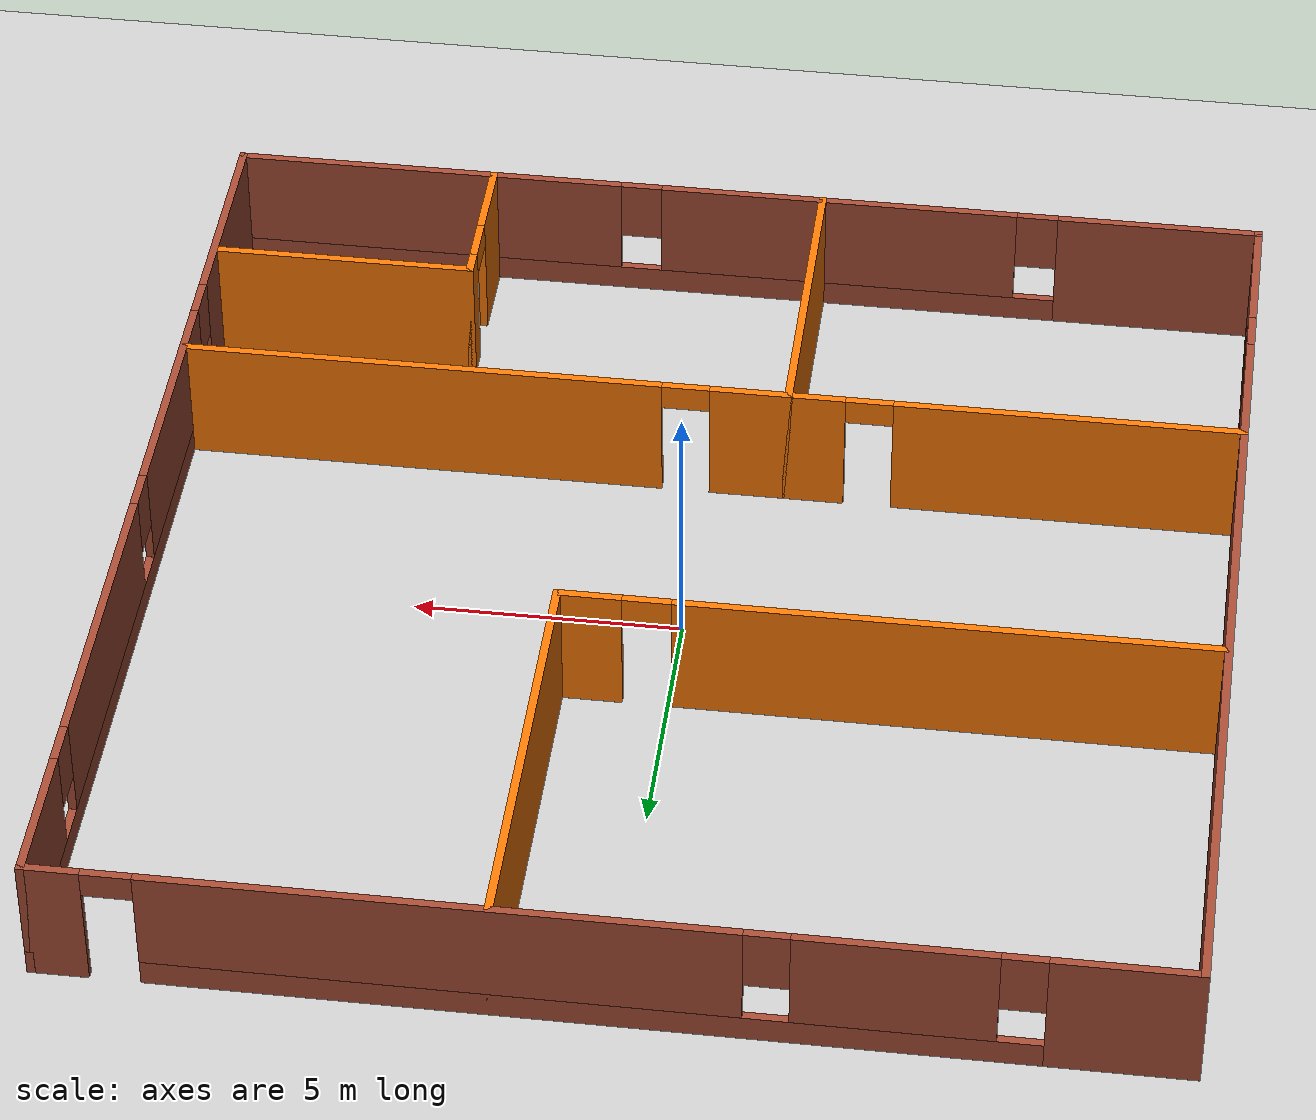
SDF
<sdf version="1.6">
 <world name="default">
  <model name="ground_plane">
   <static>1</static>
   <link name="link">
    <collision name="collision">
     <geometry><plane><normal>0 0 1</normal><size>100 100</size></plane></geometry>
     <surface><friction><ode><mu>100</mu><mu2>50</mu2></ode></friction></surface>
    </collision>
    <visual name="visual">
     <cast_shadows>0</cast_shadows>
     <geometry><plane><normal>0 0 1</normal><size>100 100</size></plane></geometry>
     <material>
      <script><uri>file://media/materials/scripts/gazebo.material</uri><name>Gazebo/Grey</name></script>
     </material>
    </visual>
   </link>
  </model>
  <model name="Building">
   <link name="Wall_0">
    <pose>0 10 0 0 -0 0</pose>
    <visual name="Wall_0_Visual_0">
     <pose>-8.74573 0 1.25 0 -0 0</pose>
     <geometry><box><size>2.65853 0.15 2.5</size></box></geometry>
     <material>
      <script><uri>file://media/materials/scripts/gazebo.material</uri><name>Gazebo/Bricks</name></script>
      <ambient>1 1 1 1</ambient>
     </material>
     <meta><layer>0</layer></meta>
    </visual>
    <collision name="Wall_0_Collision_0">
     <geometry><box><size>2.65853 0.15 2.5</size></box></geometry>
     <pose>-8.74573 0 1.25 0 -0 0</pose>
    </collision>
    <visual name="Wall_0_Visual_1">
     <pose>9.52682 0 1.25 0 -0 0</pose>
     <geometry><box><size>1.09635 0.15 2.5</size></box></geometry>
     <material>
      <script><uri>file://media/materials/scripts/gazebo.material</uri><name>Gazebo/Bricks</name></script>
      <ambient>1 1 1 1</ambient>
     </material>
     <meta><layer>0</layer></meta>
    </visual>
    <collision name="Wall_0_Collision_1">
     <geometry><box><size>1.09635 0.15 2.5</size></box></geometry>
     <pose>9.52682 0 1.25 0 -0 0</pose>
    </collision>
    <visual name="Wall_0_Visual_2">
     <pose>0.331089 0 0.25 0 -0 0</pose>
     <geometry><box><size>15.4951 0.15 0.5</size></box></geometry>
     <material>
      <script><uri>file://media/materials/scripts/gazebo.material</uri><name>Gazebo/Bricks</name></script>
      <ambient>1 1 1 1</ambient>
     </material>
     <meta><layer>0</layer></meta>
    </visual>
    <collision name="Wall_0_Collision_2">
     <geometry><box><size>15.4951 0.15 0.5</size></box></geometry>
     <pose>0.331089 0 0.25 0 -0 0</pose>
    </collision>
    <visual name="Wall_0_Visual_3">
     <pose>-4.85741 0 1.5 0 -0 0</pose>
     <geometry><box><size>3.51812 0.15 2</size></box></geometry>
     <material>
      <script><uri>file://media/materials/scripts/gazebo.material</uri><name>Gazebo/Bricks</name></script>
      <ambient>1 1 1 1</ambient>
     </material>
     <meta><layer>0</layer></meta>
    </visual>
    <collision name="Wall_0_Collision_3">
     <geometry><box><size>3.51812 0.15 2</size></box></geometry>
     <pose>-4.85741 0 1.5 0 -0 0</pose>
    </collision>
    <visual name="Wall_0_Visual_4">
     <pose>2.89015 0 1.5 0 -0 0</pose>
     <geometry><box><size>10.377 0.15 2</size></box></geometry>
     <material>
      <script><uri>file://media/materials/scripts/gazebo.material</uri><name>Gazebo/Bricks</name></script>
      <ambient>1 1 1 1</ambient>
     </material>
     <meta><layer>0</layer></meta>
    </visual>
    <collision name="Wall_0_Collision_4">
     <geometry><box><size>10.377 0.15 2</size></box></geometry>
     <pose>2.89015 0 1.5 0 -0 0</pose>
    </collision>
    <visual name="Wall_0_Visual_5">
     <pose>-7.01647 0 1.9 0 -0 0</pose>
     <geometry><box><size>0.8 0.15 1.2</size></box></geometry>
     <material>
      <script><uri>file://media/materials/scripts/gazebo.material</uri><name>Gazebo/Bricks</name></script>
      <ambient>1 1 1 1</ambient>
     </material>
     <meta><layer>0</layer></meta>
    </visual>
    <collision name="Wall_0_Collision_5">
     <geometry><box><size>0.8 0.15 1.2</size></box></geometry>
     <pose>-7.01647 0 1.9 0 -0 0</pose>
    </collision>
    <visual name="Wall_0_Visual_6">
     <pose>-2.69835 0 1.9 0 -0 0</pose>
     <geometry><box><size>0.8 0.15 1.2</size></box></geometry>
     <material>
      <script><uri>file://media/materials/scripts/gazebo.material</uri><name>Gazebo/Bricks</name></script>
      <ambient>1 1 1 1</ambient>
     </material>
     <meta><layer>0</layer></meta>
    </visual>
    <collision name="Wall_0_Collision_6">
     <geometry><box><size>0.8 0.15 1.2</size></box></geometry>
     <pose>-2.69835 0 1.9 0 -0 0</pose>
    </collision>
    <visual name="Wall_0_Visual_7">
     <pose>8.52865 0 2.25 0 -0 0</pose>
     <geometry><box><size>0.9 0.15 0.5</size></box></geometry>
     <material>
      <script><uri>file://media/materials/scripts/gazebo.material</uri><name>Gazebo/Bricks</name></script>
      <ambient>1 1 1 1</ambient>
     </material>
     <meta><layer>0</layer></meta>
    </visual>
    <collision name="Wall_0_Collision_7">
     <geometry><box><size>0.9 0.15 0.5</size></box></geometry>
     <pose>8.52865 0 2.25 0 -0 0</pose>
    </collision>
   </link>
   <link name="Wall_10">
    <collision name="Wall_10_Collision">
     <geometry><box><size>8.15 0.15 2.5</size></box></geometry>
     <pose>0 0 1.25 0 -0 0</pose>
    </collision>
    <visual name="Wall_10_Visual">
     <pose>0 0 1.25 0 -0 0</pose>
     <geometry><box><size>8.15 0.15 2.5</size></box></geometry>
     <material>
      <script><uri>file://media/materials/scripts/gazebo.material</uri><name>Gazebo/Grey</name></script>
      <ambient>0.996078 0.47451 0.0196078 1</ambient>
     </material>
     <meta><layer>0</layer></meta>
    </visual>
    <pose>2 6 0 0 -0 1.5708</pose>
   </link>
   <link name="Wall_12">
    <pose>0 -4 0 0 -0 0</pose>
    <visual name="Wall_12_Visual_0">
     <pose>-6.77572 0 1.25 0 -0 0</pose>
     <geometry><box><size>6.59856 0.15 2.5</size></box></geometry>
     <material>
      <script><uri>file://media/materials/scripts/gazebo.material</uri><name>Gazebo/Grey</name></script>
      <ambient>0.996078 0.47451 0.0196078 1</ambient>
     </material>
     <meta><layer>0</layer></meta>
    </visual>
    <collision name="Wall_12_Collision_0">
     <geometry><box><size>6.59856 0.15 2.5</size></box></geometry>
     <pose>-6.77572 0 1.25 0 -0 0</pose>
    </collision>
    <visual name="Wall_12_Visual_1">
     <pose>-1.29743 0 1.25 0 -0 0</pose>
     <geometry><box><size>2.55803 0.15 2.5</size></box></geometry>
     <material>
      <script><uri>file://media/materials/scripts/gazebo.material</uri><name>Gazebo/Grey</name></script>
      <ambient>0.996078 0.47451 0.0196078 1</ambient>
     </material>
     <meta><layer>0</layer></meta>
    </visual>
    <collision name="Wall_12_Collision_1">
     <geometry><box><size>2.55803 0.15 2.5</size></box></geometry>
     <pose>-1.29743 0 1.25 0 -0 0</pose>
    </collision>
    <visual name="Wall_12_Visual_2">
     <pose>5.47829 0 1.25 0 -0 0</pose>
     <geometry><box><size>9.19341 0.15 2.5</size></box></geometry>
     <material>
      <script><uri>file://media/materials/scripts/gazebo.material</uri><name>Gazebo/Grey</name></script>
      <ambient>0.996078 0.47451 0.0196078 1</ambient>
     </material>
     <meta><layer>0</layer></meta>
    </visual>
    <collision name="Wall_12_Collision_2">
     <geometry><box><size>9.19341 0.15 2.5</size></box></geometry>
     <pose>5.47829 0 1.25 0 -0 0</pose>
    </collision>
    <visual name="Wall_12_Visual_3">
     <pose>-3.02644 0 2.25 0 -0 0</pose>
     <geometry><box><size>0.9 0.15 0.5</size></box></geometry>
     <material>
      <script><uri>file://media/materials/scripts/gazebo.material</uri><name>Gazebo/Grey</name></script>
      <ambient>0.996078 0.47451 0.0196078 1</ambient>
     </material>
     <meta><layer>0</layer></meta>
    </visual>
    <collision name="Wall_12_Collision_3">
     <geometry><box><size>0.9 0.15 0.5</size></box></geometry>
     <pose>-3.02644 0 2.25 0 -0 0</pose>
    </collision>
    <visual name="Wall_12_Visual_4">
     <pose>0.431586 0 2.25 0 -0 0</pose>
     <geometry><box><size>0.9 0.15 0.5</size></box></geometry>
     <material>
      <script><uri>file://media/materials/scripts/gazebo.material</uri><name>Gazebo/Grey</name></script>
      <ambient>0.996078 0.47451 0.0196078 1</ambient>
     </material>
     <meta><layer>0</layer></meta>
    </visual>
    <collision name="Wall_12_Collision_4">
     <geometry><box><size>0.9 0.15 0.5</size></box></geometry>
     <pose>0.431586 0 2.25 0 -0 0</pose>
    </collision>
   </link>
   <link name="Wall_14">
    <collision name="Wall_14_Collision">
     <geometry><box><size>6.15 0.15 2.5</size></box></geometry>
     <pose>0 0 1.25 0 -0 0</pose>
    </collision>
    <visual name="Wall_14_Visual">
     <pose>0 0 1.25 0 -0 0</pose>
     <geometry><box><size>6.15 0.15 2.5</size></box></geometry>
     <material>
      <script><uri>file://media/materials/scripts/gazebo.material</uri><name>Gazebo/Grey</name></script>
      <ambient>0.996078 0.47451 0.0196078 1</ambient>
     </material>
     <meta><layer>0</layer></meta>
    </visual>
    <pose>-1.5 -7 0 0 0 -1.5708</pose>
   </link>
   <link name="Wall_16">
    <pose>5 -8.5 0 0 -0 1.5708</pose>
    <visual name="Wall_16_Visual_0">
     <pose>-0.715498 0 1.25 0 -0 0</pose>
     <geometry><box><size>1.719 0.15 2.5</size></box></geometry>
     <material>
      <script><uri>file://media/materials/scripts/gazebo.material</uri><name>Gazebo/Grey</name></script>
      <ambient>0.996078 0.47451 0.0196078 1</ambient>
     </material>
     <meta><layer>0</layer></meta>
    </visual>
    <collision name="Wall_16_Collision_0">
     <geometry><box><size>1.719 0.15 2.5</size></box></geometry>
     <pose>-0.715498 0 1.25 0 -0 0</pose>
    </collision>
    <visual name="Wall_16_Visual_1">
     <pose>1.3095 0 1.25 0 -0 0</pose>
     <geometry><box><size>0.530996 0.15 2.5</size></box></geometry>
     <material>
      <script><uri>file://media/materials/scripts/gazebo.material</uri><name>Gazebo/Grey</name></script>
      <ambient>0.996078 0.47451 0.0196078 1</ambient>
     </material>
     <meta><layer>0</layer></meta>
    </visual>
    <collision name="Wall_16_Collision_1">
     <geometry><box><size>0.530996 0.15 2.5</size></box></geometry>
     <pose>1.3095 0 1.25 0 -0 0</pose>
    </collision>
    <visual name="Wall_16_Visual_2">
     <pose>0.594004 0 2.25 0 -0 0</pose>
     <geometry><box><size>0.9 0.15 0.5</size></box></geometry>
     <material>
      <script><uri>file://media/materials/scripts/gazebo.material</uri><name>Gazebo/Grey</name></script>
      <ambient>0.996078 0.47451 0.0196078 1</ambient>
     </material>
     <meta><layer>0</layer></meta>
    </visual>
    <collision name="Wall_16_Collision_2">
     <geometry><box><size>0.9 0.15 0.5</size></box></geometry>
     <pose>0.594004 0 2.25 0 -0 0</pose>
    </collision>
   </link>
   <link name="Wall_18">
    <collision name="Wall_18_Collision">
     <geometry><box><size>5 0.15 2.5</size></box></geometry>
     <pose>0 0 1.25 0 -0 0</pose>
    </collision>
    <visual name="Wall_18_Visual">
     <pose>0 0 1.25 0 -0 0</pose>
     <geometry><box><size>5 0.15 2.5</size></box></geometry>
     <material>
      <script><uri>file://media/materials/scripts/gazebo.material</uri><name>Gazebo/Grey</name></script>
      <ambient>0.996078 0.47451 0.0196078 1</ambient>
     </material>
     <meta><layer>0</layer></meta>
    </visual>
    <pose>7.425 -7 0 0 -0 0</pose>
   </link>
   <link name="Wall_2">
    <pose>-10 0 0 0 0 -1.5708</pose>
    <visual name="Wall_2_Visual_0">
     <pose>-1.74058 0 1.25 0 -0 0</pose>
     <geometry><box><size>16.6688 0.15 2.5</size></box></geometry>
     <material>
      <script><uri>file://media/materials/scripts/gazebo.material</uri><name>Gazebo/Bricks</name></script>
      <ambient>1 1 1 1</ambient>
     </material>
     <meta><layer>0</layer></meta>
    </visual>
    <collision name="Wall_2_Collision_0">
     <geometry><box><size>16.6688 0.15 2.5</size></box></geometry>
     <pose>-1.74058 0 1.25 0 -0 0</pose>
    </collision>
    <visual name="Wall_2_Visual_1">
     <pose>8.33442 0 0.25 0 -0 0</pose>
     <geometry><box><size>3.48116 0.15 0.5</size></box></geometry>
     <material>
      <script><uri>file://media/materials/scripts/gazebo.material</uri><name>Gazebo/Bricks</name></script>
      <ambient>1 1 1 1</ambient>
     </material>
     <meta><layer>0</layer></meta>
    </visual>
    <collision name="Wall_2_Collision_1">
     <geometry><box><size>3.48116 0.15 0.5</size></box></geometry>
     <pose>8.33442 0 0.25 0 -0 0</pose>
    </collision>
    <visual name="Wall_2_Visual_2">
     <pose>8.73442 0 1.5 0 -0 0</pose>
     <geometry><box><size>2.68116 0.15 2</size></box></geometry>
     <material>
      <script><uri>file://media/materials/scripts/gazebo.material</uri><name>Gazebo/Bricks</name></script>
      <ambient>1 1 1 1</ambient>
     </material>
     <meta><layer>0</layer></meta>
    </visual>
    <collision name="Wall_2_Collision_2">
     <geometry><box><size>2.68116 0.15 2</size></box></geometry>
     <pose>8.73442 0 1.5 0 -0 0</pose>
    </collision>
    <visual name="Wall_2_Visual_3">
     <pose>6.99384 0 1.9 0 -0 0</pose>
     <geometry><box><size>0.8 0.15 1.2</size></box></geometry>
     <material>
      <script><uri>file://media/materials/scripts/gazebo.material</uri><name>Gazebo/Bricks</name></script>
      <ambient>1 1 1 1</ambient>
     </material>
     <meta><layer>0</layer></meta>
    </visual>
    <collision name="Wall_2_Collision_3">
     <geometry><box><size>0.8 0.15 1.2</size></box></geometry>
     <pose>6.99384 0 1.9 0 -0 0</pose>
    </collision>
   </link>
   <link name="Wall_4">
    <pose>0 -10 0 0 -0 0</pose>
    <visual name="Wall_4_Visual_0">
     <pose>-8.09282 0 1.25 0 -0 0</pose>
     <geometry><box><size>3.96436 0.15 2.5</size></box></geometry>
     <material>
      <script><uri>file://media/materials/scripts/gazebo.material</uri><name>Gazebo/Bricks</name></script>
      <ambient>1 1 1 1</ambient>
     </material>
     <meta><layer>0</layer></meta>
    </visual>
    <collision name="Wall_4_Collision_0">
     <geometry><box><size>3.96436 0.15 2.5</size></box></geometry>
     <pose>-8.09282 0 1.25 0 -0 0</pose>
    </collision>
    <visual name="Wall_4_Visual_1">
     <pose>1.98218 0 0.25 0 -0 0</pose>
     <geometry><box><size>16.1856 0.15 0.5</size></box></geometry>
     <material>
      <script><uri>file://media/materials/scripts/gazebo.material</uri><name>Gazebo/Bricks</name></script>
      <ambient>1 1 1 1</ambient>
     </material>
     <meta><layer>0</layer></meta>
    </visual>
    <collision name="Wall_4_Collision_1">
     <geometry><box><size>16.1856 0.15 0.5</size></box></geometry>
     <pose>1.98218 0 0.25 0 -0 0</pose>
    </collision>
    <visual name="Wall_4_Visual_2">
     <pose>-1.82339 0 1.5 0 -0 0</pose>
     <geometry><box><size>6.97451 0.15 2</size></box></geometry>
     <material>
      <script><uri>file://media/materials/scripts/gazebo.material</uri><name>Gazebo/Bricks</name></script>
      <ambient>1 1 1 1</ambient>
     </material>
     <meta><layer>0</layer></meta>
    </visual>
    <collision name="Wall_4_Collision_2">
     <geometry><box><size>6.97451 0.15 2</size></box></geometry>
     <pose>-1.82339 0 1.5 0 -0 0</pose>
    </collision>
    <visual name="Wall_4_Visual_3">
     <pose>6.26943 0 1.5 0 -0 0</pose>
     <geometry><box><size>7.61113 0.15 2</size></box></geometry>
     <material>
      <script><uri>file://media/materials/scripts/gazebo.material</uri><name>Gazebo/Bricks</name></script>
      <ambient>1 1 1 1</ambient>
     </material>
     <meta><layer>0</layer></meta>
    </visual>
    <collision name="Wall_4_Collision_3">
     <geometry><box><size>7.61113 0.15 2</size></box></geometry>
     <pose>6.26943 0 1.5 0 -0 0</pose>
    </collision>
    <visual name="Wall_4_Visual_4">
     <pose>-5.71064 0 1.9 0 -0 0</pose>
     <geometry><box><size>0.8 0.15 1.2</size></box></geometry>
     <material>
      <script><uri>file://media/materials/scripts/gazebo.material</uri><name>Gazebo/Bricks</name></script>
      <ambient>1 1 1 1</ambient>
     </material>
     <meta><layer>0</layer></meta>
    </visual>
    <collision name="Wall_4_Collision_4">
     <geometry><box><size>0.8 0.15 1.2</size></box></geometry>
     <pose>-5.71064 0 1.9 0 -0 0</pose>
    </collision>
    <visual name="Wall_4_Visual_5">
     <pose>2.06387 0 1.9 0 -0 0</pose>
     <geometry><box><size>0.8 0.15 1.2</size></box></geometry>
     <material>
      <script><uri>file://media/materials/scripts/gazebo.material</uri><name>Gazebo/Bricks</name></script>
      <ambient>1 1 1 1</ambient>
     </material>
     <meta><layer>0</layer></meta>
    </visual>
    <collision name="Wall_4_Collision_5">
     <geometry><box><size>0.8 0.15 1.2</size></box></geometry>
     <pose>2.06387 0 1.9 0 -0 0</pose>
    </collision>
   </link>
   <link name="Wall_6">
    <pose>10 0 0 0 -0 1.5708</pose>
    <visual name="Wall_6_Visual_0">
     <pose>-7.97808 0 1.25 0 -0 0</pose>
     <geometry><box><size>4.19385 0.15 2.5</size></box></geometry>
     <material>
      <script><uri>file://media/materials/scripts/gazebo.material</uri><name>Gazebo/Bricks</name></script>
      <ambient>1 1 1 1</ambient>
     </material>
     <meta><layer>0</layer></meta>
    </visual>
    <collision name="Wall_6_Collision_0">
     <geometry><box><size>4.19385 0.15 2.5</size></box></geometry>
     <pose>-7.97808 0 1.25 0 -0 0</pose>
    </collision>
    <visual name="Wall_6_Visual_1">
     <pose>2.09692 0 0.25 0 -0 0</pose>
     <geometry><box><size>15.9562 0.15 0.5</size></box></geometry>
     <material>
      <script><uri>file://media/materials/scripts/gazebo.material</uri><name>Gazebo/Bricks</name></script>
      <ambient>1 1 1 1</ambient>
     </material>
     <meta><layer>0</layer></meta>
    </visual>
    <collision name="Wall_6_Collision_1">
     <geometry><box><size>15.9562 0.15 0.5</size></box></geometry>
     <pose>2.09692 0 0.25 0 -0 0</pose>
    </collision>
    <visual name="Wall_6_Visual_2">
     <pose>-2.64967 0 1.5 0 -0 0</pose>
     <geometry><box><size>4.86297 0.15 2</size></box></geometry>
     <material>
      <script><uri>file://media/materials/scripts/gazebo.material</uri><name>Gazebo/Bricks</name></script>
      <ambient>1 1 1 1</ambient>
     </material>
     <meta><layer>0</layer></meta>
    </visual>
    <collision name="Wall_6_Collision_2">
     <geometry><box><size>4.86297 0.15 2</size></box></geometry>
     <pose>-2.64967 0 1.5 0 -0 0</pose>
    </collision>
    <visual name="Wall_6_Visual_3">
     <pose>3.56268 0 1.5 0 -0 0</pose>
     <geometry><box><size>5.96171 0.15 2</size></box></geometry>
     <material>
      <script><uri>file://media/materials/scripts/gazebo.material</uri><name>Gazebo/Bricks</name></script>
      <ambient>1 1 1 1</ambient>
     </material>
     <meta><layer>0</layer></meta>
    </visual>
    <collision name="Wall_6_Collision_3">
     <geometry><box><size>5.96171 0.15 2</size></box></geometry>
     <pose>3.56268 0 1.5 0 -0 0</pose>
    </collision>
    <visual name="Wall_6_Visual_4">
     <pose>8.70927 0 1.5 0 -0 0</pose>
     <geometry><box><size>2.73147 0.15 2</size></box></geometry>
     <material>
      <script><uri>file://media/materials/scripts/gazebo.material</uri><name>Gazebo/Bricks</name></script>
      <ambient>1 1 1 1</ambient>
     </material>
     <meta><layer>0</layer></meta>
    </visual>
    <collision name="Wall_6_Collision_4">
     <geometry><box><size>2.73147 0.15 2</size></box></geometry>
     <pose>8.70927 0 1.5 0 -0 0</pose>
    </collision>
    <visual name="Wall_6_Visual_5">
     <pose>-5.48115 0 1.9 0 -0 0</pose>
     <geometry><box><size>0.8 0.15 1.2</size></box></geometry>
     <material>
      <script><uri>file://media/materials/scripts/gazebo.material</uri><name>Gazebo/Bricks</name></script>
      <ambient>1 1 1 1</ambient>
     </material>
     <meta><layer>0</layer></meta>
    </visual>
    <collision name="Wall_6_Collision_5">
     <geometry><box><size>0.8 0.15 1.2</size></box></geometry>
     <pose>-5.48115 0 1.9 0 -0 0</pose>
    </collision>
    <visual name="Wall_6_Visual_6">
     <pose>0.18182 0 1.9 0 -0 0</pose>
     <geometry><box><size>0.8 0.15 1.2</size></box></geometry>
     <material>
      <script><uri>file://media/materials/scripts/gazebo.material</uri><name>Gazebo/Bricks</name></script>
      <ambient>1 1 1 1</ambient>
     </material>
     <meta><layer>0</layer></meta>
    </visual>
    <collision name="Wall_6_Collision_6">
     <geometry><box><size>0.8 0.15 1.2</size></box></geometry>
     <pose>0.18182 0 1.9 0 -0 0</pose>
    </collision>
    <visual name="Wall_6_Visual_7">
     <pose>6.94353 0 1.9 0 -0 0</pose>
     <geometry><box><size>0.8 0.15 1.2</size></box></geometry>
     <material>
      <script><uri>file://media/materials/scripts/gazebo.material</uri><name>Gazebo/Bricks</name></script>
      <ambient>1 1 1 1</ambient>
     </material>
     <meta><layer>0</layer></meta>
    </visual>
    <collision name="Wall_6_Collision_7">
     <geometry><box><size>0.8 0.15 1.2</size></box></geometry>
     <pose>6.94353 0 1.9 0 -0 0</pose>
    </collision>
   </link>
   <link name="Wall_8">
    <pose>-4 2 0 0 -0 0</pose>
    <visual name="Wall_8_Visual_0">
     <pose>-1.07331 0 1.25 0 -0 0</pose>
     <geometry><box><size>10.0034 0.15 2.5</size></box></geometry>
     <material>
      <script><uri>file://media/materials/scripts/gazebo.material</uri><name>Gazebo/Grey</name></script>
      <ambient>0.996078 0.47451 0.0196078 1</ambient>
     </material>
     <meta><layer>0</layer></meta>
    </visual>
    <collision name="Wall_8_Collision_0">
     <geometry><box><size>10.0034 0.15 2.5</size></box></geometry>
     <pose>-1.07331 0 1.25 0 -0 0</pose>
    </collision>
    <visual name="Wall_8_Visual_1">
     <pose>5.45169 0 1.25 0 -0 0</pose>
     <geometry><box><size>1.24661 0.15 2.5</size></box></geometry>
     <material>
      <script><uri>file://media/materials/scripts/gazebo.material</uri><name>Gazebo/Grey</name></script>
      <ambient>0.996078 0.47451 0.0196078 1</ambient>
     </material>
     <meta><layer>0</layer></meta>
    </visual>
    <collision name="Wall_8_Collision_1">
     <geometry><box><size>1.24661 0.15 2.5</size></box></geometry>
     <pose>5.45169 0 1.25 0 -0 0</pose>
    </collision>
    <visual name="Wall_8_Visual_2">
     <pose>4.37839 0 2.25 0 -0 0</pose>
     <geometry><box><size>0.9 0.15 0.5</size></box></geometry>
     <material>
      <script><uri>file://media/materials/scripts/gazebo.material</uri><name>Gazebo/Grey</name></script>
      <ambient>0.996078 0.47451 0.0196078 1</ambient>
     </material>
     <meta><layer>0</layer></meta>
    </visual>
    <collision name="Wall_8_Collision_2">
     <geometry><box><size>0.9 0.15 0.5</size></box></geometry>
     <pose>4.37839 0 2.25 0 -0 0</pose>
    </collision>
   </link>
   <static>1</static>
  </model>
 </world>
</sdf>
